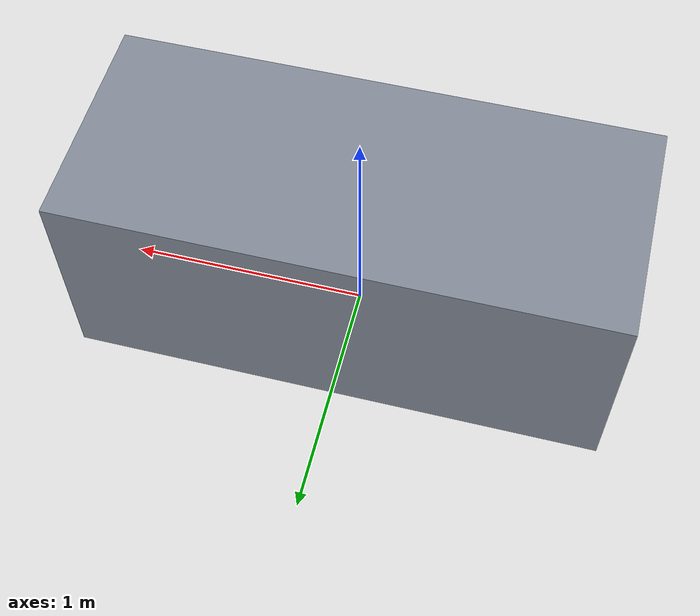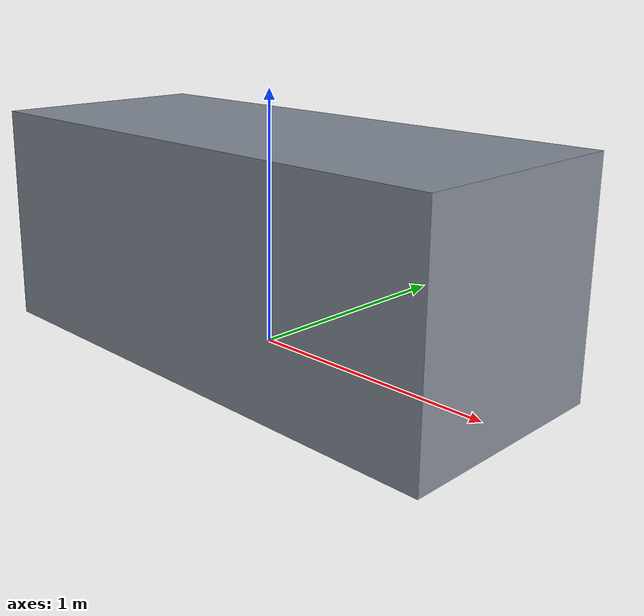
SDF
<?xml version='1.0' encoding='utf-8'?>
<sdf version="1.6">
  <model name="aws_robomaker_residential_SofaB_01">
    <static>true</static>
    <link name="link">
      <collision name="collision_1">
        <pose>0 0 0.4 0 0 0</pose>
        <geometry>
          <box>
            <size>2.2 0.92 0.9</size>
          </box>
        </geometry>
      </collision>
      <visual name="visual_1">
        <pose>0 0 0.4 0 0 0</pose>
        <geometry>
          <box>
            <size>2.2 0.92 0.9</size>
          </box>
        </geometry>
        <material>
          <ambient>0.52 0.55 0.6 1</ambient>
          <diffuse>0.52 0.55 0.6 1</diffuse>
          <specular>0.08 0.08 0.08 1</specular>
        </material>
      </visual>
    </link>
  </model>
</sdf>
